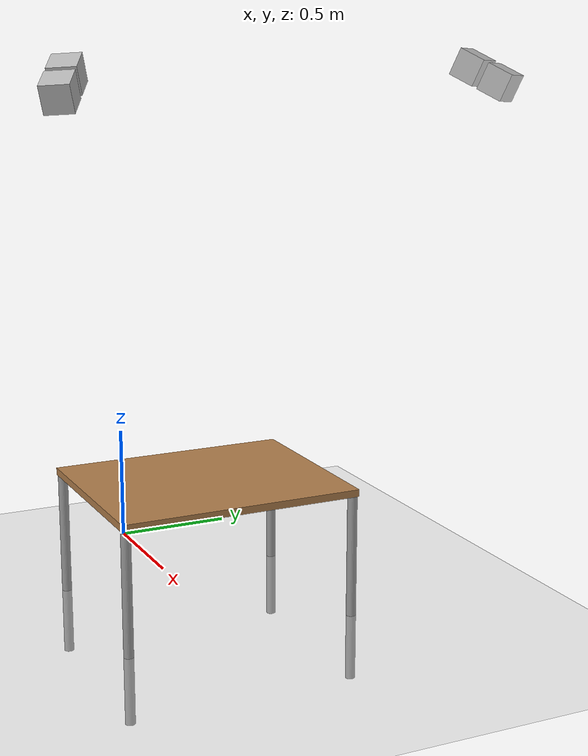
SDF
<sdf version="1.7">
 <world name="default">
  <physics name="default_physics" default="0" type="ode">
   <ode>
    <solver>
     <type>quick</type>
     <iters>20</iters>
     <sor>1</sor>
     <use_dynamic_moi_rescaling>0</use_dynamic_moi_rescaling>
    </solver>
    <constraints>
     <cfm>0</cfm>
     <erp>0.2</erp>
     <contact_max_correcting_vel>100</contact_max_correcting_vel>
     <contact_surface_layer>0</contact_surface_layer>
    </constraints>
   </ode>
   <real_time_update_rate>1000</real_time_update_rate>
   <max_step_size>0.001</max_step_size>
   <real_time_factor>1</real_time_factor>
  </physics>
  <light name="light1" type="directional">
   <pose>-2 0 4 0 -0 0</pose>
   <diffuse>1 1 1 1</diffuse>
   <specular>0.1 0.1 0.1 1</specular>
   <attenuation>
    <range>20</range>
    <constant>0.9</constant>
    <linear>0.01</linear>
    <quadratic>0.001</quadratic>
   </attenuation>
   <direction>0.2 0 -1</direction>
   <spot><inner_angle>0</inner_angle><outer_angle>0</outer_angle><falloff>0</falloff></spot>
  </light>
  <model name="ground_plane">
   <static>1</static>
   <link name="link">
    <collision name="collision">
     <geometry><plane><normal>0 0 1</normal><size>100 100</size></plane></geometry>
     <surface>
      <contact><collide_bitmask>65535</collide_bitmask></contact>
      <friction><ode><mu>100</mu><mu2>50</mu2></ode></friction>
     </surface>
    </collision>
    <visual name="visual">
     <cast_shadows>0</cast_shadows>
     <geometry><plane><normal>0 0 1</normal><size>100 100</size></plane></geometry>
     <material>
      <script><uri>file://media/materials/scripts/gazebo.material</uri><name>Gazebo/Grey</name></script>
     </material>
    </visual>
   </link>
  </model>
  <model name="table1">
   <static>1</static>
   <link name="link">
    <collision name="surface">
     <pose>0 0 0.8 0 -0 0</pose>
     <geometry><box><size>1 0.8 0.03</size></box></geometry>
    </collision>
    <visual name="visual1">
     <pose>0 0 0.8 0 -0 0</pose>
     <geometry><box><size>1 0.8 0.03</size></box></geometry>
     <material>
      <script><uri>file://media/materials/scripts/gazebo.material</uri><name>Gazebo/Wood</name></script>
     </material>
    </visual>
    <collision name="front_left_leg">
     <pose>0.48 0.38 0.4 0 -0 0</pose>
     <geometry><cylinder><radius>0.02</radius><length>0.8</length></cylinder></geometry>
    </collision>
    <visual name="front_left_leg">
     <pose>0.48 0.38 0.4 0 -0 0</pose>
     <geometry><cylinder><radius>0.02</radius><length>0.8</length></cylinder></geometry>
     <material>
      <script><uri>file://media/materials/scripts/gazebo.material</uri><name>Gazebo/Grey</name></script>
     </material>
    </visual>
    <collision name="front_right_leg">
     <pose>0.48 -0.38 0.4 0 -0 0</pose>
     <geometry><cylinder><radius>0.02</radius><length>0.8</length></cylinder></geometry>
    </collision>
    <visual name="front_right_leg">
     <pose>0.48 -0.38 0.4 0 -0 0</pose>
     <geometry><cylinder><radius>0.02</radius><length>0.8</length></cylinder></geometry>
     <material>
      <script><uri>file://media/materials/scripts/gazebo.material</uri><name>Gazebo/Grey</name></script>
     </material>
    </visual>
    <collision name="back_right_leg">
     <pose>-0.48 -0.38 0.4 0 -0 0</pose>
     <geometry><cylinder><radius>0.02</radius><length>0.8</length></cylinder></geometry>
    </collision>
    <visual name="back_right_leg">
     <pose>-0.48 -0.38 0.4 0 -0 0</pose>
     <geometry><cylinder><radius>0.02</radius><length>0.8</length></cylinder></geometry>
     <material>
      <script><uri>file://media/materials/scripts/gazebo.material</uri><name>Gazebo/Grey</name></script>
     </material>
    </visual>
    <collision name="back_left_leg">
     <pose>-0.48 0.38 0.4 0 -0 0</pose>
     <geometry><cylinder><radius>0.02</radius><length>0.8</length></cylinder></geometry>
    </collision>
    <visual name="back_left_leg">
     <pose>-0.48 0.38 0.4 0 -0 0</pose>
     <geometry><cylinder><radius>0.02</radius><length>0.8</length></cylinder></geometry>
     <material>
      <script><uri>file://media/materials/scripts/gazebo.material</uri><name>Gazebo/Grey</name></script>
     </material>
    </visual>
    <velocity_decay><linear>0</linear><angular>0</angular></velocity_decay>
   </link>
   <pose>0.926122 0.026656 -0.28 0 0 -1.57</pose>
  </model>
  <gravity>0 0 -9.81</gravity>
  <magnetic_field>6e-06 2.3e-05 -4.2e-05</magnetic_field>
  <atmosphere type="adiabatic"/>
  <scene><ambient>0.4 0.4 0.4 1</ambient><background>0.7 0.7 0.7 1</background><shadows>1</shadows></scene>
  <audio><device>default</device></audio>
  <spherical_coordinates>
   <surface_model>EARTH_WGS84</surface_model>
   <latitude_deg>0</latitude_deg>
   <longitude_deg>0</longitude_deg>
   <elevation>0</elevation>
   <heading_deg>0</heading_deg>
  </spherical_coordinates>
  <model name="camera_A">
   <pose>0.3 0.8 1.4 0 0.8 -0.6</pose>
   <static>1</static>
   <frame name="camera_A_frame" attached_to="world"><pose>0.3 0.8 1.4 0 0.8 -0.6</pose></frame>
   <link name="camera_A_left_link">
    <pose relative_to="camera_A_frame">0 -0.06 0 0 0 0</pose>
    <visual name="visual"><geometry><box><size>0.1 0.1 0.1</size></box></geometry></visual>
    <sensor name="zed_B_left" type="camera">
     <visualize>0</visualize>
     <always_on>1</always_on>
     <update_rate>100</update_rate>
     <camera>
      <horizontal_fov>1.7633</horizontal_fov>
      <image><format>R8G8B8</format><width>1280</width><height>720</height></image>
      <clip><near>0.02</near><far>300</far></clip>
      <noise><type>gaussian</type><mean>0</mean><stddev>0.007</stddev></noise>
      <distortion>
       <k1>-0.0436936</k1>
       <k2>0.0146165</k2>
       <p1>-0.00657332</p1>
       <p2>-0.0002169</p2>
       <k3>8.4328e-05</k3>
       <center>0.5 0.5</center>
      </distortion>
     </camera>
     <plugin name="camera_controller" filename="libgazebo_ros_camera.so">
      <cameraName>zed2_A/zed_node/left_raw</cameraName>
      <imageTopicName>image_raw_color</imageTopicName>
      <cameraInfoTopicName>camera_info</cameraInfoTopicName>
      <distortionK1>-0.043693598</distortionK1>
      <distortionK2>0.0146164996</distortionK2>
      <distortionT1>-0.006573319</distortionT1>
      <distortionT2>-0.000216900</distortionT2>
      <distortionK3>0.000084328</distortionK3>
      <CxPrime>648.5</CxPrime>
      <Cx>648.5</Cx>
      <Cy>366.8340148925781</Cy>
      <hackBaseline>0.0</hackBaseline>
     </plugin>
    </sensor>
   </link>
   <link name="camera_A_right_link">
    <pose relative_to="camera_A_frame">0 0.06 0 0 0 0</pose>
    <visual name="visual"><geometry><box><size>0.1 0.1 0.1</size></box></geometry></visual>
    <sensor name="zed_B_right" type="camera">
     <visualize>0</visualize>
     <always_on>1</always_on>
     <update_rate>100</update_rate>
     <camera>
      <horizontal_fov>1.7633</horizontal_fov>
      <image><format>R8G8B8</format><width>1280</width><height>720</height></image>
      <clip><near>0.02</near><far>300</far></clip>
      <noise><type>gaussian</type><mean>0</mean><stddev>0.007</stddev></noise>
      <distortion>
       <k1>-0.0436936</k1>
       <k2>0.0146165</k2>
       <p1>-0.00657332</p1>
       <p2>-0.0002169</p2>
       <k3>8.4328e-05</k3>
       <center>0.5 0.5</center>
      </distortion>
     </camera>
     <plugin name="camera_controller" filename="libgazebo_ros_camera.so">
      <cameraName>zed2_A/zed_node/right_raw</cameraName>
      <imageTopicName>image_raw_color</imageTopicName>
      <cameraInfoTopicName>camera_info</cameraInfoTopicName>
      <distortionK1>-0.043693598</distortionK1>
      <distortionK2>0.0146164996</distortionK2>
      <distortionT1>-0.006573319</distortionT1>
      <distortionT2>-0.000216900</distortionT2>
      <distortionK3>0.000084328</distortionK3>
      <CxPrime>648.5</CxPrime>
      <Cx>648.5</Cx>
      <Cy>366.8340148925781</Cy>
      <hackBaseline>0.0</hackBaseline>
     </plugin>
    </sensor>
   </link>
  </model>
  <model name="camera_B">
   <pose>0.3 -0.8 1.4 0 0.8 0.6</pose>
   <static>1</static>
   <frame name="camera_B_frame" attached_to="world"><pose>0.3 -0.8 1.4 0 0.8 0.6</pose></frame>
   <link name="camera_B_left_link">
    <pose relative_to="camera_B_frame">0 -0.06 0 0 0 0</pose>
    <visual name="visual"><geometry><box><size>0.1 0.1 0.1</size></box></geometry></visual>
    <sensor name="zed_B_left" type="camera">
     <visualize>0</visualize>
     <always_on>1</always_on>
     <update_rate>100</update_rate>
     <camera>
      <horizontal_fov>1.7633</horizontal_fov>
      <image><format>R8G8B8</format><width>1280</width><height>720</height></image>
      <clip><near>0.02</near><far>300</far></clip>
      <noise><type>gaussian</type><mean>0</mean><stddev>0.007</stddev></noise>
      <distortion>
       <k1>-0.0436936</k1>
       <k2>0.0146165</k2>
       <p1>-0.00657332</p1>
       <p2>-0.0002169</p2>
       <k3>8.4328e-05</k3>
       <center>0.5 0.5</center>
      </distortion>
     </camera>
     <plugin name="camera_controller" filename="libgazebo_ros_camera.so">
      <cameraName>zed2_B/zed_node/left_raw</cameraName>
      <imageTopicName>image_raw_color</imageTopicName>
      <cameraInfoTopicName>camera_info</cameraInfoTopicName>
      <distortionK1>-0.043693598</distortionK1>
      <distortionK2>0.0146164996</distortionK2>
      <distortionT1>-0.006573319</distortionT1>
      <distortionT2>-0.000216900</distortionT2>
      <distortionK3>0.000084328</distortionK3>
      <CxPrime>648.5</CxPrime>
      <Cx>648.5</Cx>
      <Cy>366.8340148925781</Cy>
      <hackBaseline>0.0</hackBaseline>
     </plugin>
    </sensor>
   </link>
   <link name="camera_B_right_link">
    <pose relative_to="camera_B_frame">0 0.06 0 0 0 0</pose>
    <visual name="visual"><geometry><box><size>0.1 0.1 0.1</size></box></geometry></visual>
    <sensor name="zed_B_right" type="camera">
     <visualize>0</visualize>
     <always_on>1</always_on>
     <update_rate>100</update_rate>
     <camera>
      <horizontal_fov>1.7633</horizontal_fov>
      <image><format>R8G8B8</format><width>1280</width><height>720</height></image>
      <clip><near>0.02</near><far>300</far></clip>
      <noise><type>gaussian</type><mean>0</mean><stddev>0.007</stddev></noise>
      <distortion>
       <k1>-0.0436936</k1>
       <k2>0.0146165</k2>
       <p1>-0.00657332</p1>
       <p2>-0.0002169</p2>
       <k3>8.4328e-05</k3>
       <center>0.5 0.5</center>
      </distortion>
     </camera>
     <plugin name="camera_controller" filename="libgazebo_ros_camera.so">
      <cameraName>zed2_B/zed_node/right_raw</cameraName>
      <imageTopicName>image_raw_color</imageTopicName>
      <cameraInfoTopicName>camera_info</cameraInfoTopicName>
      <distortionK1>-0.043693598</distortionK1>
      <distortionK2>0.0146164996</distortionK2>
      <distortionT1>-0.006573319</distortionT1>
      <distortionT2>-0.000216900</distortionT2>
      <distortionK3>0.000084328</distortionK3>
      <CxPrime>648.5</CxPrime>
      <Cx>648.5</Cx>
      <Cy>366.8340148925781</Cy>
      <hackBaseline>0.0</hackBaseline>
     </plugin>
    </sensor>
   </link>
  </model>
 </world>
</sdf>
